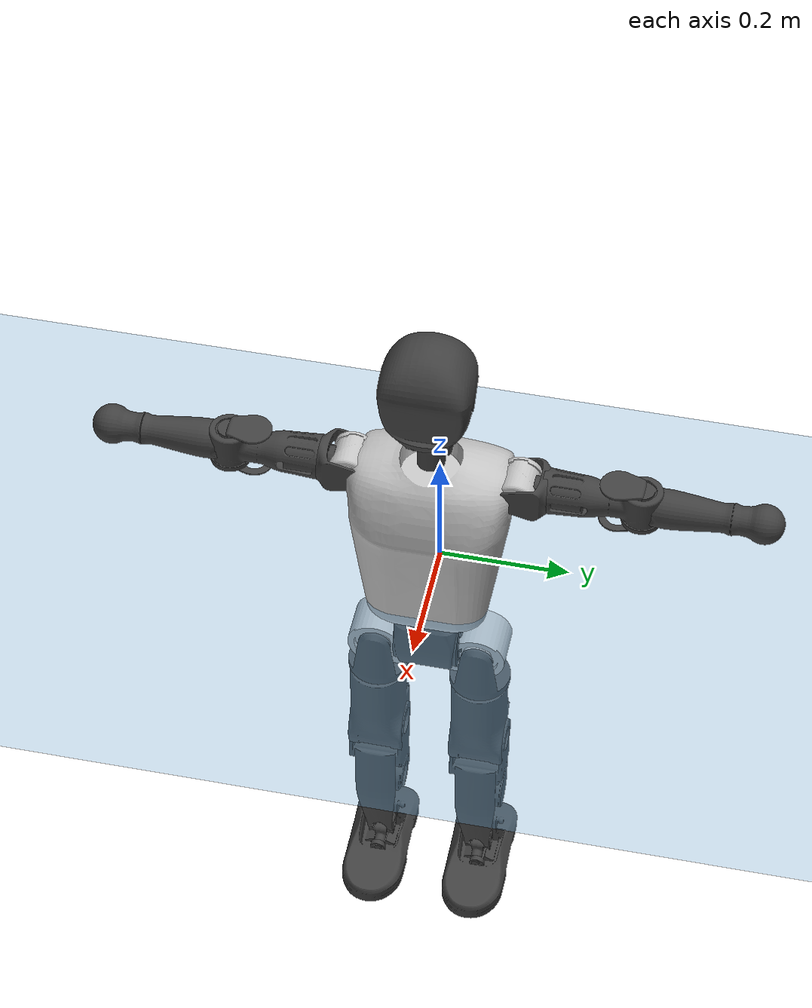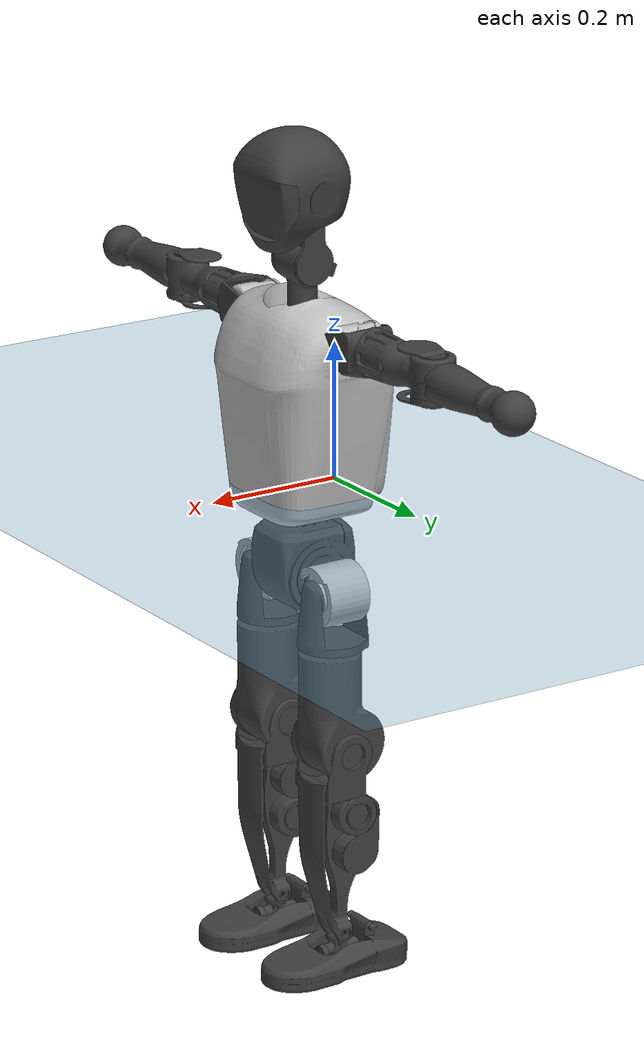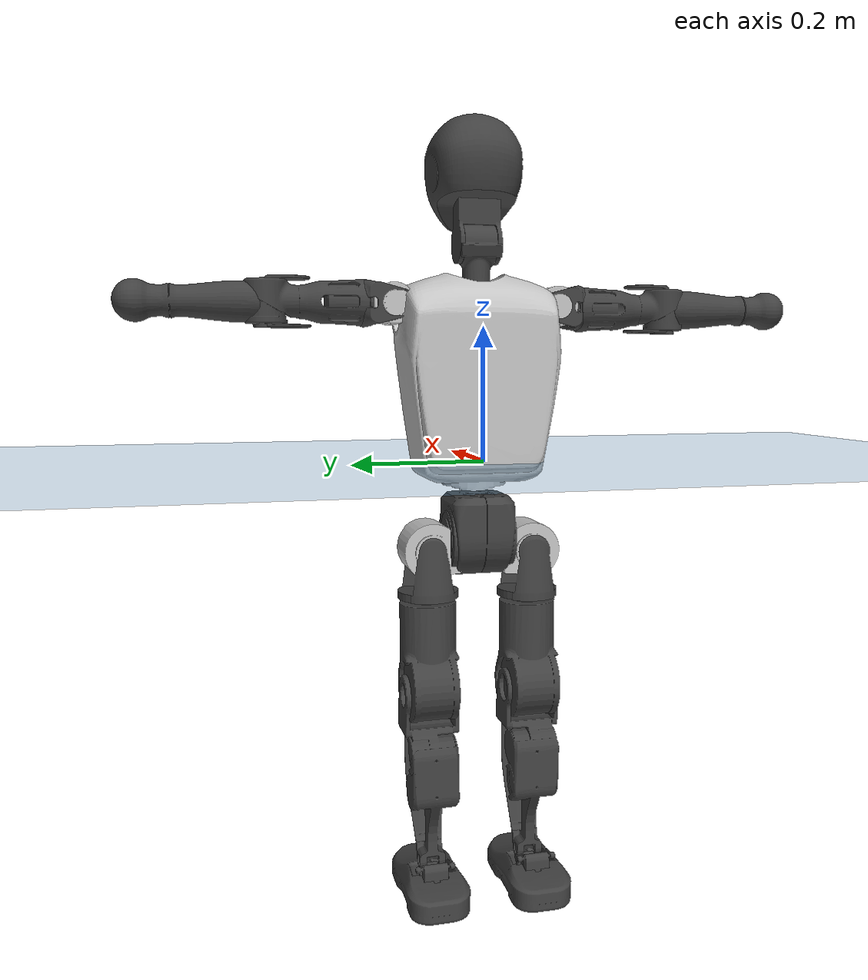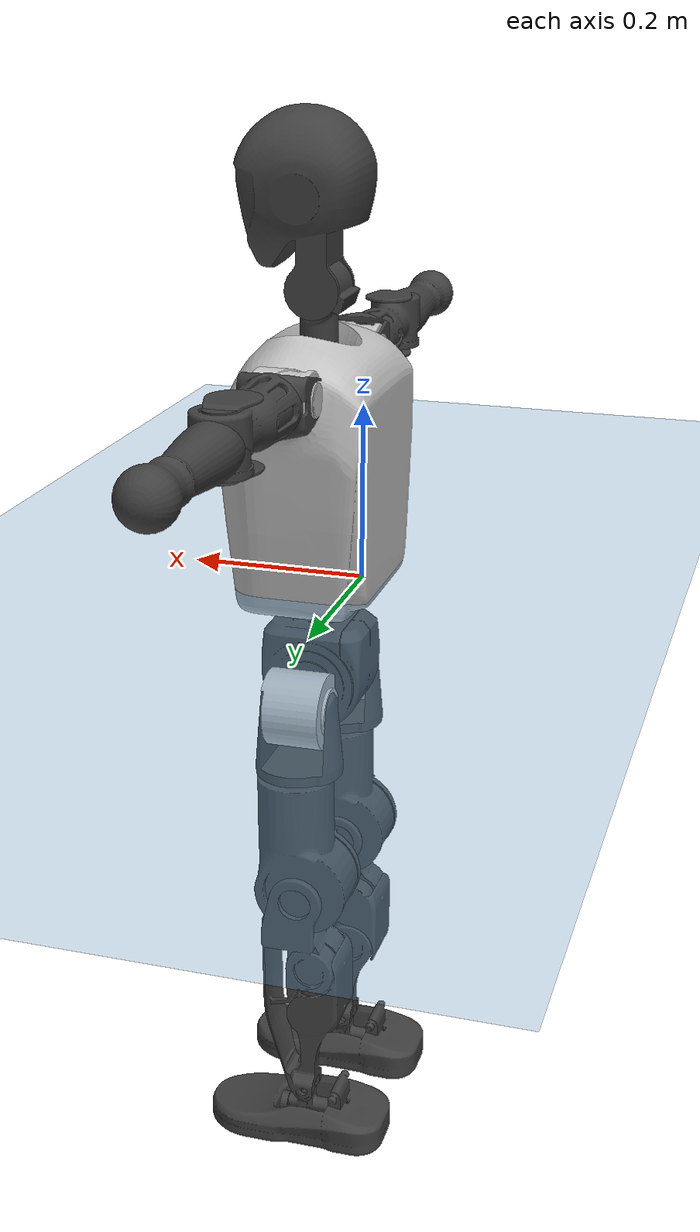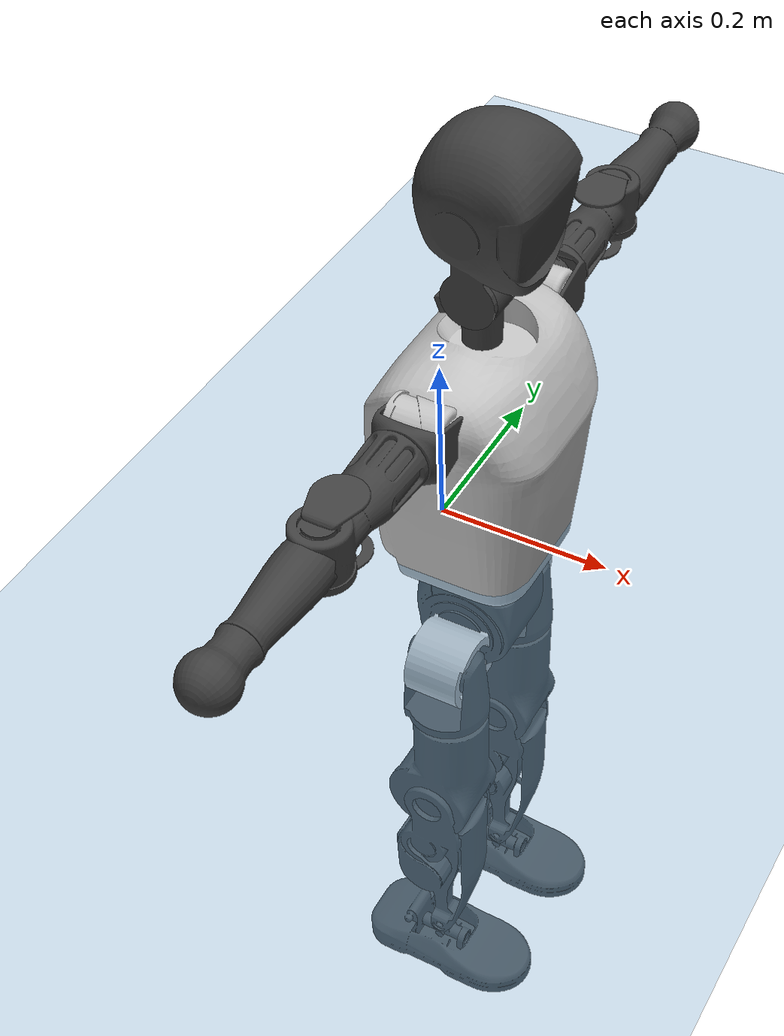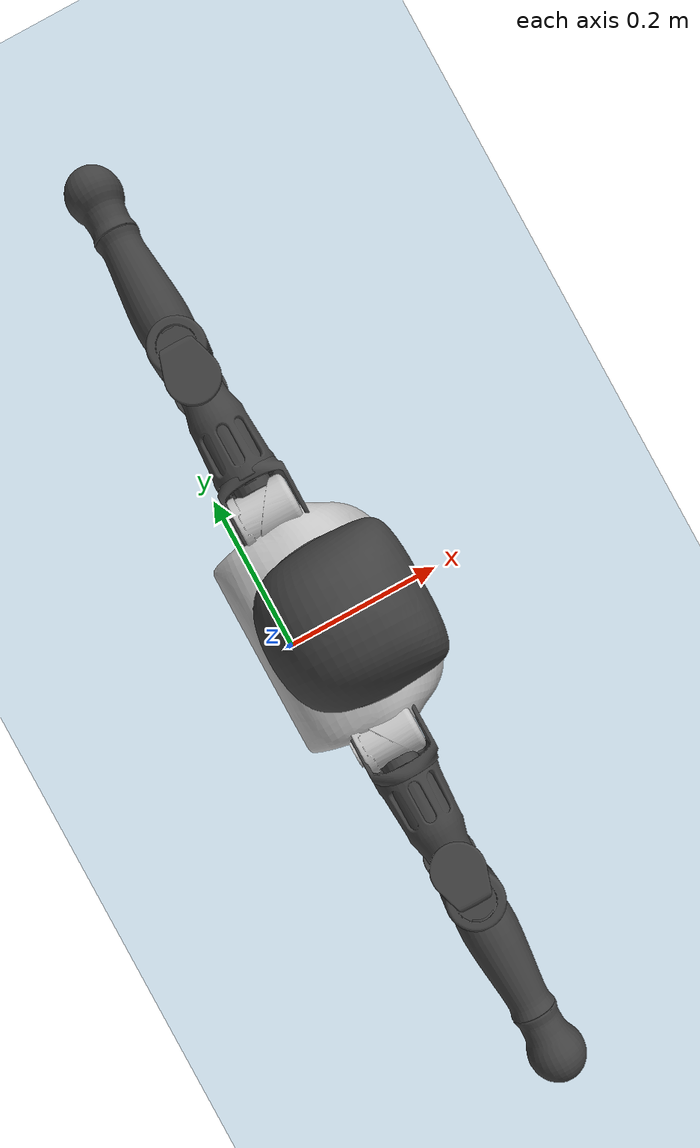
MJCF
<mujoco model="T1">
  <compiler angle="radian" assetdir="assets" balanceinertia="true" inertiafromgeom="false"/>

  <option timestep="0.005" density="1.2" viscosity="2e-05"/>

  <size nkey="1"/>

  <visual>
    <quality shadowsize="8192"/>
    <map shadowclip="0.5"/>
  </visual>

  <default>
    <default class="/">
      <joint armature="0.01" damping="0.01" frictionloss="0.1"/>
      <geom contype="0" conaffinity="0" group="1" solref="-1000 -80"/>
      <site size="0.01 0.005 0.005" group="5"/>
      <general forcelimited="true" biastype="affine" gainprm="25" biasprm="0 -25 -0.6"/>
      <default class="t1">
        <geom rgba="0.25 0.25 0.25 1"/>
        <default class="visual">
          <geom type="mesh" group="2"/>
        </default>
        <default class="collision">
          <geom group="3"/>
        </default>
        <default class="foot">
          <geom size="0.1115 0.05 0.015" type="box" condim="6" group="4" priority="1" solimp="0.015 1 0.015"/>
        </default>
        <default class="reward_collision_sphere">
          <geom group="5" rgba="1 0 0 1"/>
        </default>
      </default>
    </default>
  </default>

  <asset>
    <texture type="skybox" colorspace="auto" name="//unnamed_texture_0" builtin="gradient" rgb1="0.95 0.95 0.95" rgb2="0.95 0.95 0.95" width="100" height="600"/>
    <texture type="2d" colorspace="auto" name="texplane" builtin="checker" rgb1="0.345 0.575 0.748" rgb2="0.345 0.575 0.748" markrgb="1 1 1" width="512" height="512"/>
    <material name="MatPlane" class="/" texture="texplane" texuniform="true" texrepeat="2 2" specular="0.9"/>
    <mesh name="Trunk" class="/" file="Trunk.stl"/>
    <mesh name="H1" class="/" file="H1.stl"/>
    <mesh name="H2" class="/" file="H2.stl"/>
    <mesh name="AL1" class="/" file="AL1.stl"/>
    <mesh name="AL2" class="/" file="AL2.stl"/>
    <mesh name="AL3" class="/" file="AL3.stl"/>
    <mesh name="left_hand_link" class="/" file="left_hand_link.stl"/>
    <mesh name="AR1" class="/" file="AR1.stl"/>
    <mesh name="AR2" class="/" file="AR2.stl"/>
    <mesh name="AR3" class="/" file="AR3.stl"/>
    <mesh name="right_hand_link" class="/" file="right_hand_link.stl"/>
    <mesh name="Waist" class="/" file="Waist.stl"/>
    <mesh name="Hip_Pitch_Left" class="/" file="Hip_Pitch_Left.stl"/>
    <mesh name="Hip_Roll_Left" class="/" file="Hip_Roll_Left.stl"/>
    <mesh name="Hip_Yaw_Left" class="/" file="Hip_Yaw_Left.stl"/>
    <mesh name="Shank_Left" class="/" file="Shank_Left.stl"/>
    <mesh name="Ankle_Cross_Left" class="/" file="Ankle_Cross_Left.stl"/>
    <mesh name="left_foot_link" class="/" file="left_foot_link.stl"/>
    <mesh name="Hip_Pitch_Right" class="/" file="Hip_Pitch_Right.stl"/>
    <mesh name="Hip_Roll_Right" class="/" file="Hip_Roll_Right.stl"/>
    <mesh name="Hip_Yaw_Right" class="/" file="Hip_Yaw_Right.stl"/>
    <mesh name="Shank_Right" class="/" file="Shank_Right.stl"/>
    <mesh name="Ankle_Cross_Right" class="/" file="Ankle_Cross_Right.stl"/>
    <mesh name="right_foot_link" class="/" file="right_foot_link.stl"/>
  </asset>

  <worldbody>
    <geom name="floor" class="/" size="100 100 0.125" type="plane" group="0" material="MatPlane"/>
    <light name="toplight_shadow" class="/" pos="0 0 5" dir="0.0990148 0.0990148 -0.990148" type="directional" ambient="0.04 0.04 0.04" diffuse="0.55 0.55 0.55" specular="0.12 0.12 0.12"/>
    <light name="toplight_fill" class="/" pos="0 0 5" dir="0.0990148 0.0990148 -0.990148" type="directional" castshadow="false" ambient="0.04 0.04 0.04" diffuse="0.3 0.3 0.3" specular="0.08 0.08 0.08"/>
    <body name="trunk" childclass="t1" pos="-2.39238e-05 -0.0010623 0.00232795" quat="1 -9.85338e-05 -7.65226e-05 -9.39619e-05">
      <inertial pos="0.0468215 -0.00305088 0.111743" quat="0.999881 -0.00213779 -0.0146627 -0.00426297" mass="8.0489" diaginertia="0.0378935 0.0188208 0.0762916"/>
      <joint name="//unnamed_joint_0" type="free" armature="0" damping="0" frictionloss="0"/>
      <geom name="//unnamed_geom_1" class="visual" rgba="0.76 0.76 0.76 1" mesh="Trunk"/>
      <geom name="//unnamed_geom_2" class="collision" size="0.0664126 0.0885502 0.132825" pos="0.0501556 0 0.127704" type="box"/>
      <geom name="//unnamed_geom_3" class="reward_collision_sphere" size="0.101833" pos="0.0501556 0 0.10642"/>
      <geom name="//unnamed_geom_4" class="reward_collision_sphere" size="0.0132825" pos="0.0501556 0.0642924 0"/>
      <geom name="//unnamed_geom_5" class="reward_collision_sphere" size="0.0132825" pos="0.0501556 -0.0642924 0"/>
      <geom name="//unnamed_geom_6" class="reward_collision_sphere" size="0.0132825" pos="0.0501556 0.0809328 0.191556"/>
      <geom name="//unnamed_geom_7" class="reward_collision_sphere" size="0.0132825" pos="0.0501556 -0.0809328 0.191556"/>
      <site name="imu" pos="-0.000262159 0.0133871 -0.000316661" size="0.00885502"/>
      <camera name="track" pos="0 -1.51276 0" quat="0.707107 0.707107 0 0" mode="trackcom"/>
      <camera name="ego_camera" pos="0.101983 0 0.446963" quat="-0.5 -0.5 0.5 0.5"/>
      <body name="H1" pos="0.0518745 -0.00189254 0.258761" quat="0.999999 -0.000380077 0.000413981 0.00116809">
        <inertial pos="-0.00183703 -7.43992e-05 0.0611828" quat="0.762441 -0.0144392 0.000601572 0.646897" mass="0.300926" diaginertia="9.83326e-05 5.6332e-05 0.000208792"/>
        <joint name="AAHead_yaw" pos="0 0 0" axis="0.00163832 -0.000133495 0.999999" range="-1.56777 1.62349" armature="0.00870014" damping="0" frictionloss="0.0810849"/>
        <geom name="//unnamed_geom_8" class="visual" mesh="H1"/>
        <body name="H2" pos="-0.000252419 0.000125354 0.0632235" quat="0.999999 0.000656212 -5.74233e-05 0.00109079">
          <inertial pos="0.00528127 0.00200789 0.107167" quat="0.987547 0.113628 -0.0774507 -0.0764278" mass="0.437558" diaginertia="0.00083018 0.000474557 0.00231657"/>
          <joint name="Head_pitch" pos="0 0 0" axis="0.00964264 -0.999941 -0.00505713" range="-1.24387 0.36006" armature="0.00912502" damping="0.00376287" frictionloss="0.0909888"/>
          <geom name="//unnamed_geom_9" class="visual" mesh="H2"/>
          <geom name="//unnamed_geom_10" class="collision" size="0.0708402" pos="0.00835926 0 0.117062"/>
          <geom name="//unnamed_geom_11" class="reward_collision_sphere" size="0.0796952" pos="0.0167185 0 0.10642"/>
        </body>
      </body>
      <body name="AL1" pos="0.0494935 0.0825324 0.231622" quat="1 0.000217668 0.000462467 0.000146289">
        <inertial pos="-0.00129707 0.0324632 0.000134529" quat="0.498743 0.488026 -0.508351 0.504644" mass="0.357858" diaginertia="0.000538343 0.000310436 0.000386659"/>
        <joint name="Left_Shoulder_Pitch" pos="0 0 0" axis="0.00666369 0.999965 -0.00497216" range="-3.25271 1.21364" armature="0.00787569" damping="0.00207617" frictionloss="0.086399"/>
        <geom name="//unnamed_geom_12" class="visual" rgba="0.76 0.76 0.76 1" mesh="AL1"/>
        <body name="AL2" pos="0.00150351 0.0374612 2.66456e-05" quat="0.999999 -0.000144498 -0.00129246 0.000238367">
          <inertial pos="0.00592166 0.0297322 -0.000319267" quat="0.488955 0.512166 -0.483475 0.514646" mass="0.106605" diaginertia="0.000157181 8.27735e-05 0.000229915"/>
          <joint name="Left_Shoulder_Roll" pos="0 0 0" axis="-1 3.78693e-05 -0.0004314" range="-1.57614 1.76081" armature="0.00968781" damping="0.018343" frictionloss="0.091443"/>
          <geom name="//unnamed_geom_13" class="visual" mesh="AL2"/>
          <body name="AL3" pos="-0.000552904 0.0457853 0.000948008" quat="0.999999 -0.000219846 0.000896446 -0.000975554">
            <inertial pos="0.00244313 0.0634958 0.000172781" quat="0.705112 0.70898 -0.0119336 -0.00473848" mass="0.731296" diaginertia="0.00547756 0.00337491 0.000877636"/>
            <joint name="Left_Elbow_Pitch" pos="0 0 0" axis="0.000194158 -0.999993 0.00381728" range="-2.27784 2.32222" armature="0.00998118" damping="0.00915296" frictionloss="0.100384"/>
            <geom name="//unnamed_geom_14" class="visual" mesh="AL3"/>
            <geom name="//unnamed_geom_15" class="collision" size="0.0265651 0.0664126" pos="0 0.0378191 0" quat="0.707105 0.707108 0 0" type="cylinder"/>
            <geom name="//unnamed_geom_16" class="reward_collision_sphere" size="0.0318781"/>
            <body name="left_hand_link" pos="-0.000626978 0.11145 -0.000622982" quat="0.999999 -0.000787746 0.00097323 0.000433946">
              <inertial pos="0.00140359 0.085114 0.000722783" quat="0.709816 0.704375 0.00393209 -0.00170967" mass="0.223758" diaginertia="0.0034294 0.00206468 0.000282492"/>
              <joint name="Left_Elbow_Yaw" pos="0 0 0" axis="-0.0148317 0.00176635 0.999888" range="-2.45752 0.054121" armature="0.00781658" damping="1.89752e-05" frictionloss="0.0927274"/>
              <geom name="//unnamed_geom_17" class="visual" mesh="left_hand_link"/>
              <geom name="//unnamed_geom_18" class="collision" size="0.0265651 0.0774814" pos="0 0.0983296 0" quat="0.707105 0.707108 0 0" type="cylinder"/>
              <geom name="//unnamed_geom_19" class="reward_collision_sphere" size="0.0442751"/>
              <geom name="//unnamed_geom_20" class="reward_collision_sphere" size="0.0309926" pos="0 0.0832019 0"/>
              <geom name="//unnamed_geom_21" class="reward_collision_sphere" size="0.0309926" pos="0 0.162622 0"/>
            </body>
          </body>
        </body>
      </body>
      <body name="AR1" pos="0.0485936 -0.0764735 0.229857" quat="1 -7.49726e-05 0.000514608 0.000215257">
        <inertial pos="-0.00141638 -0.0369331 0.000532817" quat="0.501639 0.496816 -0.50311 0.498409" mass="0.373186" diaginertia="0.000553821 0.000316688 0.00039664"/>
        <joint name="Right_Shoulder_Pitch" pos="0 0 0" axis="-0.00198035 -0.999898 0.0141716" range="-1.22621 3.36441" armature="0.00932889" damping="0.00931613" frictionloss="0.0764519"/>
        <geom name="//unnamed_geom_22" class="visual" rgba="0.76 0.76 0.76 1" mesh="AR1"/>
        <body name="AR2" pos="0.00220981 -0.0368713 -0.00101575" quat="1 6.01211e-05 -9.02817e-05 -5.2909e-05">
          <inertial pos="0.0055658 -0.0289912 -0.000615504" quat="0.513166 0.488643 -0.511389 0.486179" mass="0.118823" diaginertia="0.000169578 8.74e-05 0.000248662"/>
          <joint name="Right_Shoulder_Roll" pos="0 0 0" axis="-0.999994 -0.000714554 -0.00338287" range="-1.73484 1.61648" armature="0.00929411" damping="0" frictionloss="0.0996992"/>
          <geom name="//unnamed_geom_23" class="visual" mesh="AR2"/>
          <body name="AR3" pos="-0.00297343 -0.0472326 -0.00213345" quat="1 0.000330288 0.000150034 8.1652e-05">
            <inertial pos="-0.000197018 -0.0622817 0.000472429" quat="0.708165 0.706045 -0.00154861 0.000883516" mass="0.751613" diaginertia="0.00541852 0.00327675 0.000875931"/>
            <joint name="Right_Elbow_Pitch" pos="0 0 0" axis="0.00180536 0.999998 -0.000192051" range="-2.3194 2.21604" armature="0.00875537" damping="0.0154373" frictionloss="0.090024"/>
            <geom name="//unnamed_geom_24" class="visual" mesh="AR3"/>
            <geom name="//unnamed_geom_25" class="collision" size="0.0265651 0.0664126" pos="0 -0.0378191 0" quat="0.707105 0.707108 0 0" type="cylinder"/>
            <geom name="//unnamed_geom_26" class="reward_collision_sphere" size="0.0318781"/>
            <body name="right_hand_link" pos="-0.00111577 -0.110582 0.00118846" quat="1 0.000237474 -3.90261e-05 0.00021111">
              <inertial pos="0.000161436 -0.082448 -0.00161586" quat="0.711801 0.702371 -0.00334006 -0.0019379" mass="0.214915" diaginertia="0.0032283 0.00199261 0.00028889"/>
              <joint name="Right_Elbow_Yaw" pos="0 0 0" axis="0.0129534 0.00520485 0.999903" stiffness="0.00152757" range="-0.00434271 2.49074" armature="0.00913437" damping="0.00723483" frictionloss="0.089725"/>
              <geom name="//unnamed_geom_27" class="visual" mesh="right_hand_link"/>
              <geom name="//unnamed_geom_28" class="collision" size="0.0265651 0.0774814" pos="0 -0.0983296 0" quat="0.707105 0.707108 0 0" type="cylinder"/>
              <geom name="//unnamed_geom_29" class="reward_collision_sphere" size="0.0442751"/>
              <geom name="//unnamed_geom_30" class="reward_collision_sphere" size="0.0309926" pos="0 -0.0832019 0"/>
              <geom name="//unnamed_geom_31" class="reward_collision_sphere" size="0.0309926" pos="0 -0.162622 0"/>
            </body>
          </body>
        </body>
      </body>
      <body name="Waist" pos="0.0500553 -0.00267799 -0.12372" quat="0.999999 -0.000710534 0.00089069 -0.000782605">
        <inertial pos="0.000721788 -0.00350555 0.00675462" quat="0.983664 -0.000197665 -0.179992 0.00266563" mass="1.78561" diaginertia="0.0021393 0.00126976 0.0062855"/>
        <joint name="Waist" pos="0 0 0" axis="0.009204 0.00355502 0.999951" stiffness="0.00304284" range="-1.58209 1.56242" armature="0.00853285" damping="0" frictionloss="0.0764767"/>
        <geom name="//unnamed_geom_32" class="visual" mesh="Waist"/>
        <body name="Hip_Pitch_Left" pos="0.00194081 0.077924 0.00227991" quat="0.999999 -0.00078089 0.0012172 0.000479003">
          <inertial pos="0.00106101 -0.00509471 -0.0191905" quat="0.974736 0.222582 0.0184024 0.00278531" mass="0.706502" diaginertia="0.000740446 0.000370203 0.00168303"/>
          <joint name="Left_Hip_Pitch" pos="0 0 0" axis="0.000495737 0.999985 0.00542063" range="-1.7795 1.55955" armature="0.00922367" damping="0.00992873" frictionloss="0.0883248"/>
          <geom name="//unnamed_geom_33" class="visual" rgba="0.76 0.76 0.76 1" mesh="Hip_Pitch_Left"/>
          <body name="Hip_Roll_Left" pos="0.00265973 0.00128756 -0.0200624" quat="0.999999 -0.000778813 0.000900285 0.000454488">
            <inertial pos="-0.00156377 -0.00282604 -0.0581585" quat="0.707898 0.00577042 -0.0117639 0.706193" mass="0.264471" diaginertia="0.000679096 0.000366283 0.00069805"/>
            <joint name="Left_Hip_Roll" pos="0 0 0" axis="-0.999931 -0.00227174 0.0115464" range="-1.61262 0.256381" armature="0.00998132" damping="0.00581173" frictionloss="0.089085"/>
            <geom name="//unnamed_geom_34" class="visual" mesh="Hip_Roll_Left"/>
            <geom name="//unnamed_geom_35" class="reward_collision_sphere" size="0.0487026"/>
            <body name="Hip_Yaw_Left" pos="0.00232107 0.000242949 -0.0851799" quat="0.999999 0.000325097 0.00101462 0.00111238">
              <inertial pos="-0.00677274 0.000301396 -0.0960905" quat="0.699279 -0.0337053 -0.035046 0.713193" mass="1.51872" diaginertia="0.0103712 0.00635527 0.00368799"/>
              <joint name="Left_Hip_Yaw" pos="0 0 0" axis="0.000128551 0.000832648 -1" range="-1.02605 0.952266" armature="0.00847885" damping="0.0151631" frictionloss="0.0914677"/>
              <geom name="//unnamed_geom_36" class="visual" mesh="Hip_Yaw_Left"/>
              <geom name="//unnamed_geom_37" class="collision" size="0.0442751 0.0708402" type="cylinder"/>
              <body name="Shank_Left" pos="-0.00985857 0.00118955 -0.146024" quat="1 -2.57078e-07 2.29617e-06 -1.10948e-05">
                <inertial pos="-0.00238887 -0.00253374 -0.132418" quat="0.997437 -0.00218982 -0.0212385 0.0682888" mass="1.17655" diaginertia="0.0140837 0.00824317 0.0024704"/>
                <joint name="Left_Knee_Pitch" pos="0 0 0" axis="0.00442026 0.999985 0.00313015" range="0.0216326 2.34819" armature="0.00915387" damping="0.00723151" frictionloss="0.0862319"/>
                <geom name="//unnamed_geom_38" class="visual" mesh="Shank_Left"/>
                <geom name="//unnamed_geom_39" class="collision" size="0.0442751 0.0664126" pos="0 0 -0.127704" type="cylinder"/>
                <geom name="//unnamed_geom_40" class="reward_collision_sphere" size="0.0575576"/>
                <body name="Ankle_Cross_Left" pos="0.000636809 -0.000399844 -0.295898" quat="1 0.000715271 6.06711e-05 9.39767e-05">
                  <inertial pos="-0.000785087 -0.00066134 -0.00954516" quat="0.441052 0.55095 0.552289 0.443738" mass="0.0526691" diaginertia="1.19846e-05 6.36565e-06 1.55525e-05"/>
                  <joint name="Left_Ankle_Pitch" pos="0 0 0" axis="0.00600265 0.999978 -0.00276905" stiffness="6.56847e-05" range="-0.85974 0.339891" armature="0.00908513" damping="0.0135763" frictionloss="0.0791401"/>
                  <geom name="//unnamed_geom_41" class="visual" mesh="Ankle_Cross_Left"/>
                  <body name="left_foot_link" pos="1.3029e-06 0.00306663 -0.0129546" quat="1 0.000182863 -0.000548497 0.000135948">
                    <inertial pos="-0.000530806 0.00253107 -0.0101856" quat="0.00414559 0.62304 -0.0068843 0.782149" mass="0.454807" diaginertia="0.00112466 0.000593054 0.002979"/>
                    <joint name="Left_Ankle_Roll" pos="0 0 0" axis="-0.999937 -0.000788199 -0.0111937" range="-0.434537 0.495385" armature="0.0098891" damping="0.00959805" frictionloss="0.0870182"/>
                    <geom name="//unnamed_geom_42" class="visual" mesh="left_foot_link"/>
                    <geom name="left_foot" class="foot" size="0.108188 0.0503979 0.0139424" pos="0.00835926 0 -0.015963"/>
                    <geom name="//unnamed_geom_44" class="reward_collision_sphere" size="0.0460461" pos="0.00835926 0 -0.015963"/>
                    <geom name="//unnamed_geom_45" class="reward_collision_sphere" size="0.0265651" pos="0.079413 -0.0173968 -0.015963"/>
                    <geom name="//unnamed_geom_46" class="reward_collision_sphere" size="0.0265651" pos="-0.0585148 -0.0173968 -0.015963"/>
                    <site name="left_foot" class="foot" pos="0.00835926 0 -0.015963" size="0.00885502"/>
                  </body>
                </body>
              </body>
            </body>
          </body>
        </body>
        <body name="Hip_Pitch_Right" pos="0.00223055 -0.0812737 -0.00219167" quat="1 0.000140212 9.03233e-05 -0.000200033">
          <inertial pos="-0.00226237 0.0050032 -0.0191376" quat="0.972621 -0.231558 0.0180575 -0.00795863" mass="0.702049" diaginertia="0.000729353 0.000360828 0.00169011"/>
          <joint name="Right_Hip_Pitch" pos="0 0 0" axis="-0.00142935 -0.999999 0.000331509" range="-1.59296 1.76907" armature="0.00993929" damping="0.00700737" frictionloss="0.0852396"/>
          <geom name="//unnamed_geom_47" class="visual" rgba="0.76 0.76 0.76 1" mesh="Hip_Pitch_Right"/>
          <body name="Hip_Roll_Right" pos="-0.000349274 -0.0016431 -0.0196998" quat="1 -0.00020006 -0.000198487 0.000333206">
            <inertial pos="0.00153818 -0.0032105 -0.0593303" quat="0.71658 -0.00555388 -0.00712546 0.697447" mass="0.255595" diaginertia="0.000682616 0.000366281 0.000679266"/>
            <joint name="Right_Hip_Roll" pos="0 0 0" axis="-0.999994 -0.00153807 -0.00315675" range="-0.19615 1.57136" armature="0.00879482" damping="0.0036401" frictionloss="0.0780218"/>
            <geom name="//unnamed_geom_48" class="visual" mesh="Hip_Roll_Right"/>
            <geom name="//unnamed_geom_49" class="reward_collision_sphere" size="0.0487026"/>
            <body name="Hip_Yaw_Right" pos="0.00303051 -0.000985641 -0.0859633" quat="0.999999 0.000927108 0.00061569 -0.000735361">
              <inertial pos="-0.00522117 -0.00298678 -0.0945795" quat="0.715177 -0.0311909 -0.0341443 0.697411" mass="1.48323" diaginertia="0.0102147 0.00609777 0.00346675"/>
              <joint name="Right_Hip_Yaw" pos="0 0 0" axis="-0.0104067 -0.00666111 -0.999924" range="-1.03102 1.05622" armature="0.00931641" damping="0.00826557" frictionloss="0.0889271"/>
              <geom name="//unnamed_geom_50" class="visual" mesh="Hip_Yaw_Right"/>
              <geom name="//unnamed_geom_51" class="collision" size="0.0442751 0.0708402" type="cylinder"/>
              <body name="Shank_Right" pos="-0.0114284 -0.000519338 -0.141392" quat="1 -4.97622e-05 -0.000196265 -0.00024455">
                <inertial pos="-0.00494538 0.000809624 -0.131166" quat="0.999102 -0.000955567 -0.0226824 -0.0357734" mass="1.19546" diaginertia="0.0134834 0.00840654 0.00259661"/>
                <joint name="Right_Knee_Pitch" pos="0 0 0" axis="-0.00107088 -0.999999 0.00035566" range="-2.32377 -0.00116947" armature="0.00888916" damping="0.00465321" frictionloss="0.0910268"/>
                <geom name="//unnamed_geom_52" class="visual" mesh="Shank_Right"/>
                <geom name="//unnamed_geom_53" class="collision" size="0.0442751 0.0664126" pos="0 0 -0.127704" type="cylinder"/>
                <geom name="//unnamed_geom_54" class="reward_collision_sphere" size="0.0575576"/>
                <body name="Ankle_Cross_Right" pos="0.000810126 -0.000949384 -0.298279" quat="0.999999 0.00100055 -0.000649771 -0.000295417">
                  <inertial pos="-0.00203531 0.000758986 -0.0112298" quat="0.435402 0.561637 0.54825 0.440919" mass="0.0486653" diaginertia="1.10688e-05 6.32311e-06 1.44524e-05"/>
                  <joint name="Right_Ankle_Pitch" pos="0 0 0" axis="-0.00647834 -0.999915 0.0113037" range="-0.307021 0.864758" armature="0.0088451" damping="0" frictionloss="0.0775765"/>
                  <geom name="//unnamed_geom_55" class="visual" mesh="Ankle_Cross_Right"/>
                  <body name="right_foot_link" pos="-9.12166e-05 -0.0012845 -0.0127718" quat="1 5.12537e-06 -1.37073e-06 1.76673e-05">
                    <inertial pos="-0.00255682 -0.00245168 -0.00998422" quat="0.00977715 0.619248 0.00320572 0.785128" mass="0.477931" diaginertia="0.00111221 0.000597924 0.00294389"/>
                    <joint name="Right_Ankle_Roll" pos="0 0 0" axis="-0.999998 -0.000696922 0.00167773" stiffness="8.41015e-05" range="-0.417651 0.438333" armature="0.00922431" damping="0.021088" frictionloss="0.0909891"/>
                    <geom name="//unnamed_geom_56" class="visual" mesh="right_foot_link"/>
                    <geom name="right_foot" class="foot" size="0.0981984 0.0458422 0.0129772" pos="0.00835926 0 -0.015963"/>
                    <geom name="//unnamed_geom_58" class="reward_collision_sphere" size="0.0354201"/>
                    <geom name="//unnamed_geom_59" class="reward_collision_sphere" size="0.0265651" pos="0.00835926 0 -0.015963"/>
                    <geom name="//unnamed_geom_60" class="reward_collision_sphere" size="0.0265651" pos="0.079413 0.0173968 -0.015963"/>
                    <geom name="//unnamed_geom_61" class="reward_collision_sphere" size="0.0265651" pos="-0.0585148 0.0173968 -0.015963"/>
                    <site name="right_foot" class="foot" pos="0.00835926 0 -0.015963" size="0.00885502"/>
                  </body>
                </body>
              </body>
            </body>
          </body>
        </body>
      </body>
    </body>
  </worldbody>

  <contact>
    <pair class="/" geom1="floor" geom2="left_foot" name="//unnamed_contact_0"/>
    <pair class="/" geom1="floor" geom2="right_foot" name="//unnamed_contact_1"/>
  </contact>

  <actuator>
    <general name="AAHead_yaw" class="/" joint="AAHead_yaw" forcerange="-6.66898 6.66898" gainprm="21.7059" biasprm="0 -21.7059 -0.496856"/>
    <general name="Head_pitch" class="/" joint="Head_pitch" forcerange="-6.70444 6.70444" gainprm="21.7059" biasprm="0 -21.7059 -0.496856"/>
    <general name="Left_Shoulder_Pitch" class="/" joint="Left_Shoulder_Pitch" forcerange="-15.8201 15.8201" gainprm="21.7059" biasprm="0 -21.7059 -0.496856"/>
    <general name="Left_Shoulder_Roll" class="/" joint="Left_Shoulder_Roll" forcerange="-15.5949 15.5949" gainprm="21.7059" biasprm="0 -21.7059 -0.496856"/>
    <general name="Left_Elbow_Pitch" class="/" joint="Left_Elbow_Pitch" forcerange="-17.607 17.607" gainprm="21.7059" biasprm="0 -21.7059 -0.496856"/>
    <general name="Left_Elbow_Yaw" class="/" joint="Left_Elbow_Yaw" forcerange="-14.94 14.94" gainprm="21.7059" biasprm="0 -21.7059 -0.496856"/>
    <general name="Right_Shoulder_Pitch" class="/" joint="Right_Shoulder_Pitch" forcerange="-14.4026 14.4026" gainprm="21.7059" biasprm="0 -21.7059 -0.496856"/>
    <general name="Right_Shoulder_Roll" class="/" joint="Right_Shoulder_Roll" forcerange="-15.554 15.554" gainprm="21.7059" biasprm="0 -21.7059 -0.496856"/>
    <general name="Right_Elbow_Pitch" class="/" joint="Right_Elbow_Pitch" forcerange="-17.6019 17.6019" gainprm="21.7059" biasprm="0 -21.7059 -0.496856"/>
    <general name="Right_Elbow_Yaw" class="/" joint="Right_Elbow_Yaw" forcerange="-15.9596 15.9596" gainprm="21.7059" biasprm="0 -21.7059 -0.496856"/>
    <general name="Waist" class="/" joint="Waist" forcerange="-27.6857 27.6857" gainprm="21.7059" biasprm="0 -21.7059 -0.496856"/>
    <general name="Left_Hip_Pitch" class="/" joint="Left_Hip_Pitch" forcerange="-40.3712 40.3712" gainprm="21.7059" biasprm="0 -21.7059 -0.496856"/>
    <general name="Left_Hip_Roll" class="/" joint="Left_Hip_Roll" forcerange="-29.2782 29.2782" gainprm="21.7059" biasprm="0 -21.7059 -0.496856"/>
    <general name="Left_Hip_Yaw" class="/" joint="Left_Hip_Yaw" forcerange="-23.9903 23.9903" gainprm="21.7059" biasprm="0 -21.7059 -0.496856"/>
    <general name="Left_Knee_Pitch" class="/" joint="Left_Knee_Pitch" forcerange="-57.4358 57.4358" gainprm="21.7059" biasprm="0 -21.7059 -0.496856"/>
    <general name="Left_Ankle_Pitch" class="/" joint="Left_Ankle_Pitch" forcerange="-16.1133 16.1133" gainprm="21.7059" biasprm="0 -21.7059 -0.496856"/>
    <general name="Left_Ankle_Roll" class="/" joint="Left_Ankle_Roll" forcerange="-13.2253 13.2253" gainprm="21.7059" biasprm="0 -21.7059 -0.496856"/>
    <general name="Right_Hip_Pitch" class="/" joint="Right_Hip_Pitch" forcerange="-40.2299 40.2299" gainprm="21.7059" biasprm="0 -21.7059 -0.496856"/>
    <general name="Right_Hip_Roll" class="/" joint="Right_Hip_Roll" forcerange="-25.3144 25.3144" gainprm="21.7059" biasprm="0 -21.7059 -0.496856"/>
    <general name="Right_Hip_Yaw" class="/" joint="Right_Hip_Yaw" forcerange="-25.4476 25.4476" gainprm="21.7059" biasprm="0 -21.7059 -0.496856"/>
    <general name="Right_Knee_Pitch" class="/" joint="Right_Knee_Pitch" forcerange="-58.2831 58.2831" gainprm="21.7059" biasprm="0 -21.7059 -0.496856"/>
    <general name="Right_Ankle_Pitch" class="/" joint="Right_Ankle_Pitch" forcerange="-18.7204 18.7204" gainprm="21.7059" biasprm="0 -21.7059 -0.496856"/>
    <general name="Right_Ankle_Roll" class="/" joint="Right_Ankle_Roll" forcerange="-11.9282 11.9282" gainprm="21.7059" biasprm="0 -21.7059 -0.496856"/>
  </actuator>

  <sensor>
    <gyro site="imu" name="imu_angular_velocity"/>
    <velocimeter site="imu" name="imu_linear_velocity"/>
    <framelinvel objtype="site" objname="left_foot" name="left_foot_global_linear_velocity"/>
    <framelinvel objtype="site" objname="right_foot" name="right_foot_global_linear_velocity"/>
  </sensor>

  <keyframe>
    <key name="home" qpos="0 0 0.6385 1 0 0 0 0 0 0 1.4 0 -0.4 0 -1.4 0 0.4 0 -0.4 0 0 0.8 -0.4 0 0.4 0 0 -0.8 0.4 0"/>
  </keyframe>
</mujoco>
